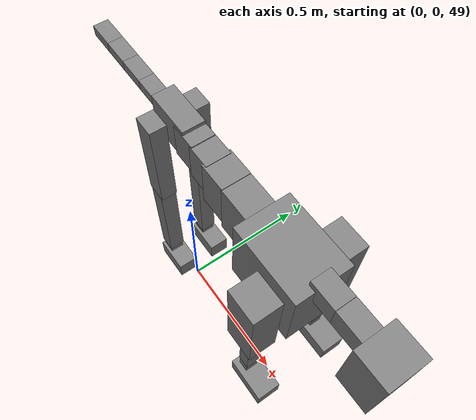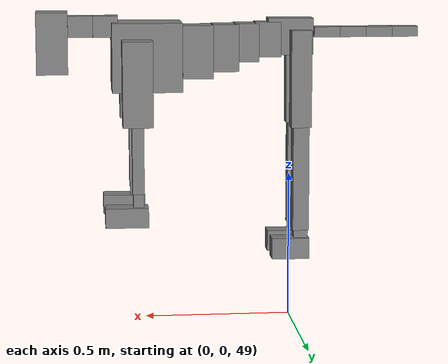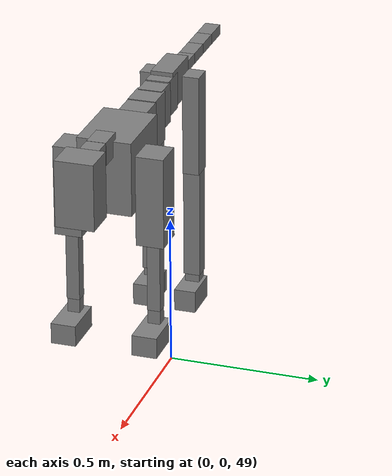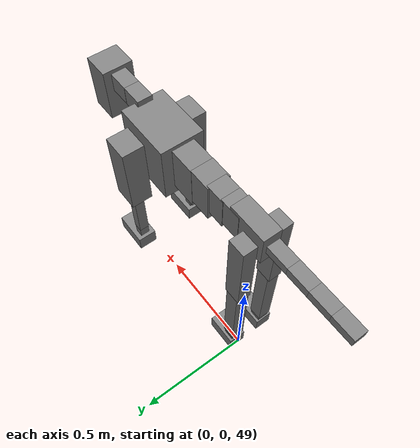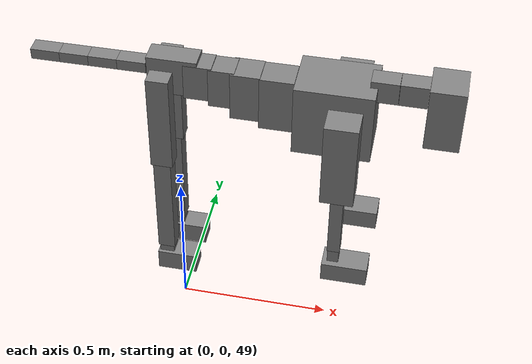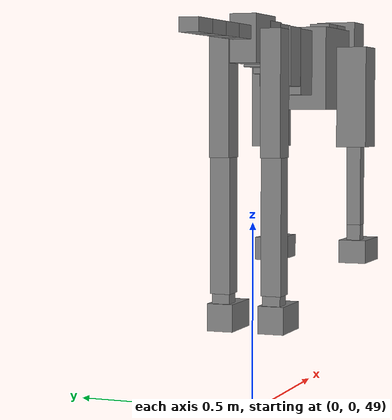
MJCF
<mujoco model="dog">

    <default>
        <joint armature="0.02" stiffness="1" damping="0.2" limited="true"/>
        <geom condim="3" friction="1 0.05 0.05" margin="0.01"/>
        <motor ctrllimited="true" ctrlrange="-1.0 1.0" forcelimited="true" gear="50"/>
    </default>

    <compiler inertiafromgeom="true" angle="radian"/>

    <option timestep="0.016" iterations="50" tolerance="1e-10" solver="Newton" jacobian="dense" cone="pyramidal"/>

    <size nconmax="20000" njmax="60000" nstack="5000000"/>
    <visual>
        <map force="0.1" zfar="30"/>
        <rgba haze="0.15 0.25 0.35 1"/>
        <quality shadowsize="2048"/>
        <global offwidth="800" offheight="800"/>
    </visual>

    <asset>
        <texture type="skybox" builtin="gradient" rgb1="0.3 0.5 0.7" rgb2="0 0 0" width="512" height="512"/>
        <texture name="texplane" type="2d" builtin="checker" rgb1=".2 .3 .4" rgb2=".1 0.15 0.2" width="512" height="512"
                 mark="cross" markrgb=".8 .8 .8"/>
        <texture name="texgeom" type="cube" builtin="flat" mark="cross" width="127" height="1278" rgb1="0.8 0.6 0.4"
                 rgb2="0.8 0.6 0.4" markrgb="1 1 1" random="0.01"/>

        <material name="matplane" reflectance="0.3" texture="texplane" texrepeat="1 1" texuniform="true"/>
        <material name="matgeom" texture="texgeom" texuniform="true" rgba="0.8 0.6 .4 1"/>
    </asset>

    <worldbody>
        <geom name="floor" pos="0 0 0" size="0 0 .25" type="plane" material="matplane" condim="3"/>

        <light directional="false" diffuse=".2 .2 .2" specular="0 0 0" pos="0 0 5" dir="0 0 -1" castshadow="false"/>
        <light mode="targetbodycom" target="torso" directional="false" diffuse=".8 .8 .8" specular="0.3 0.3 0.3"
               pos="0 0 4.0" dir="0 0 -1"/>

        <body name="root" pos="0 0 50">
            <freejoint name="root_1"/>
            <geom type="box" pos="0 0 -0.02" size="0.0774  0.0358  0.063" density="2030"/>

            <body name="spine1" pos="0.054 0 0">
                <joint name="spine1_y" axis="0 1 0" range="0 0.7" limited="true"/>
                <geom type="box" pos="0.02375 0 -0.03" size="0.04375  0.0375  0.05985" density="2030"/>

                <body name="spine2" pos="0.0612 0 0">
                    <joint name="spine2_y" axis="0 1 0" range="-0.15 0.15" limited="true"/>
                    <geom type="box" pos="0.03555  0  -0.04" size="0.04055  0.039  0.06615" density="2030"/>

                    <body name="spine3" pos="0.0730 0 0">
                        <joint name="spine3_y" axis="0 1 0" range="-0.15 0.15" limited="true"/>
                        <geom type="box" pos="0.03555  0  -0.057" size="0.04555  0.0445  0.081" density="2030"/>

                        <body name="spine4" pos="0.0780 0 0">
                            <joint name="spine4_y" axis="0 1 0" range="-0.15 0.15" limited="true"/>
                            <geom type="box" pos="0.05265  0  -0.07" size="0.05265  0.045  0.09135" density="2030"/>

                            <body name="torso" pos="0.1082 0 0">
                                <joint name="torso_y" axis="0 1 0" range="-0.15 0.15" limited="true"/>
                                <geom type="box" pos="0.11925  0  -0.085" size="0.11925  0.085  0.11745"
                                      density="2030"/>

                                <body name="neck1" pos="0.2160  0   0.0180">
                                    <joint name="neck1_y" axis="0 1 0" range="-1.2  -1" limited="true"/>
                                    <geom type="box" pos="0.0423  0  0" size="0.0423  0.03  0.036" density="2325"/>

                                    <body name="neck2" pos="0.0853  0  0">
                                        <joint name="neck2_y" axis="0 1 0" range="0.1  0" limited="true"/>
                                        <geom type="box" pos="0.0423  0  0" size="0.0423  0.03  0.036" density="2325"/>

                                        <body name="head" pos="0.0853  0  0">
                                            <joint name="head_y" axis="0 1 0" range="-0.3  -0.2" limited="true"/>
                                            <geom type="box" pos="0.0531  0  -0.055" size="0.0531  0.06  0.1044"
                                                  density="4030"/>

                                        </body>
                                    </body>
                                </body>

                                <body name="front_shoulder" pos="0.156  0   -0.0480">
                                    <joint name="front_shoulder_y" axis="0 1 0" range="-1 1.5" limited="true"/>
                                    <geom type="box" pos="0 0.13 -0.1179" size="0.0510  0.0436  0.1445" density="1158"/>
                                    <geom type="box" pos="0 -0.13 -0.1179" size="0.0510  0.0436  0.1445"
                                          density="1158"/>

                                    <body name="front_elbow" pos="0  0  -0.2358">
                                        <joint name="front_elbow_y" axis="0 1 0" range="-2 0" limited="true"/>
                                        <geom type="box" pos="0 0.13 -0.1273" size="0.0200  0.0205  0.1273"
                                              density="1081"/>
                                        <geom type="box" pos="0 -0.13 -0.1273" size="0.0200  0.0205  0.1273"
                                              density="1081"/>

                                        <body name="front_wrist" pos="0  0  -0.2546">
                                            <joint name="front_wrist_y" axis="0 1 0" range="-0.2 0" limited="true"/>
                                            <geom type="box" pos="0 0.13 -0.0300" size="0.0178  0.0198  0.0431"
                                                  density="1664"/>
                                            <geom type="box" pos="0 -0.13 -0.0300" size="0.0178  0.0198  0.0431"
                                                  density="1664"/>

                                            <body name="front_finger_end" pos="0  0  -0.0600">
                                                <joint name="front_finger_y" axis="0 1 0" range="-0.4 1"
                                                       limited="true"/>
                                                <geom type="box" pos="0.0396  0.13  -0.0184"
                                                      size="0.0726  0.0396  0.0334" density="1515"/>
                                                <geom type="box" pos="0.0396  -0.13  -0.0184"
                                                      size="0.0726  0.0396  0.0334" density="1515"/>

                                            </body>

                                        </body>
                                    </body>
                                </body>

                            </body>
                        </body>
                    </body>
                </body>
            </body>

            <body name="back_hip" pos="-0.03 0 -0.018">
                <joint name="back_hip_y" axis="0 1 0" range="-1.5 0.3" limited="true"/>
                <geom type="box" pos="0 0.07 -0.1430" size="0.0348  0.0273  0.1658" density="1154"/>
                <geom type="box" pos="0 -0.07 -0.1430" size="0.0348  0.0273  0.1658" density="1154"/>

                <body name="back_knee" pos="0  0  -0.2860">
                    <joint name="back_knee_y" axis="0 1 0" range="0 2.8" limited="true"/>
                    <geom type="box" pos="0 0.07 -0.1822" size="0.0275  0.0272  0.1977" density="1227"/>
                    <geom type="box" pos="0 -0.07 -0.1822" size="0.0275  0.0272  0.1977" density="1227"/>

                    <body name="back_ankle" pos="0  0  -0.3643">
                        <joint name="back_ankle_y" axis="0 1 0" range="-2.2 0" limited="true"/>
                        <geom type="box" pos="0 0.07 -0.0284" size="0.0239  0.0239  0.0397" density="1284"/>
                        <geom type="box" pos="0 -0.07 -0.0284" size="0.0239  0.0239  0.0397" density="1284"/>

                        <body name="back_toe_end" pos="0  0  -0.0569">
                            <joint name="back_toe_y" axis="0 1 0" range="-0.4 1" limited="true"/>
                            <geom type="box" pos="0.0351  0.07  -0.0212" size="0.0643  0.0351  0.0362" density="1515"/>
                            <geom type="box" pos="0.0351  -0.07  -0.0212" size="0.0643  0.0351  0.0362" density="1515"/>

                        </body>
                    </body>
                </body>
            </body>

            <body name="tail1" pos="-0.074 0 -0.006">
                <joint name="tail1_y" axis="0 1 0" range="-0.2 0.2" limited="true"/>
                <geom type="box" pos="-0.0536  0  0" size="0.045  0.025  0.0175" density="1587"/>

                <body name="tail2" pos="-0.09 0 0">
                    <joint name="tail2_y" axis="0 1 0" range="-0.2 0.2" limited="true"/>
                    <geom type="box" pos="-0.0536  0  0" size="0.045  0.025  0.0175" density="1587"/>

                    <body name="tail3" pos="-0.09 0 0">
                        <joint name="tail3_y" axis="0 1 0" range="-0.2 0.2" limited="true"/>
                        <geom type="box" pos="-0.0536  0  0" size="0.045  0.025  0.0175" density="1587"/>

                        <body name="tail4" pos="-0.09 0 0">
                            <joint name="tail4_y" axis="0 1 0" range="-0.2 0.2" limited="true"/>
                            <geom type="box" pos="-0.0536  0  0" size="0.045  0.025  0.0175" density="1587"/>

                        </body>
                    </body>
                </body>
            </body>
        </body>
    </worldbody>

    <actuator>
        <motor joint="spine1_y" forcerange="-150 150     "/>
        <motor joint="spine2_y" forcerange="-150 150     "/>
        <motor joint="spine3_y" forcerange="-150 150     "/>
        <motor joint="spine4_y" forcerange="-150 150     "/>
        <motor joint="torso_y" forcerange="-150 150     "/>
        <motor joint="neck1_y" forcerange="-100 100       "/>
        <motor joint="neck2_y" forcerange="-100 100       "/>
        <motor joint="head_y" forcerange="-150 150       "/>
        <motor joint="front_shoulder_y" forcerange="-191.15 199.62"/>
        <motor joint="front_elbow_y" forcerange="-100.84 148.20"/>
        <motor joint="front_wrist_y" forcerange="-62.39 96.02"/>
        <motor joint="front_finger_y" forcerange="-98.51 72.77"/>
        <motor joint="back_hip_y" forcerange="-293.50 270.19"/>
        <motor joint="back_knee_y" forcerange="-341.32 253.64"/>
        <motor joint="back_angle_y" forcerange="-108.44 173.35"/>
        <motor joint="back_toe_y" forcerange="-113.87 86.71"/>
        <motor joint="tail1_y" forcerange="-50 50     "/>
        <motor joint="tail2_y" forcerange="-50 50     "/>
        <motor joint="tail3_y" forcerange="-50 50     "/>
        <motor joint="tail4_y" forcerange="-50 50     "/>
    </actuator>
</mujoco>
